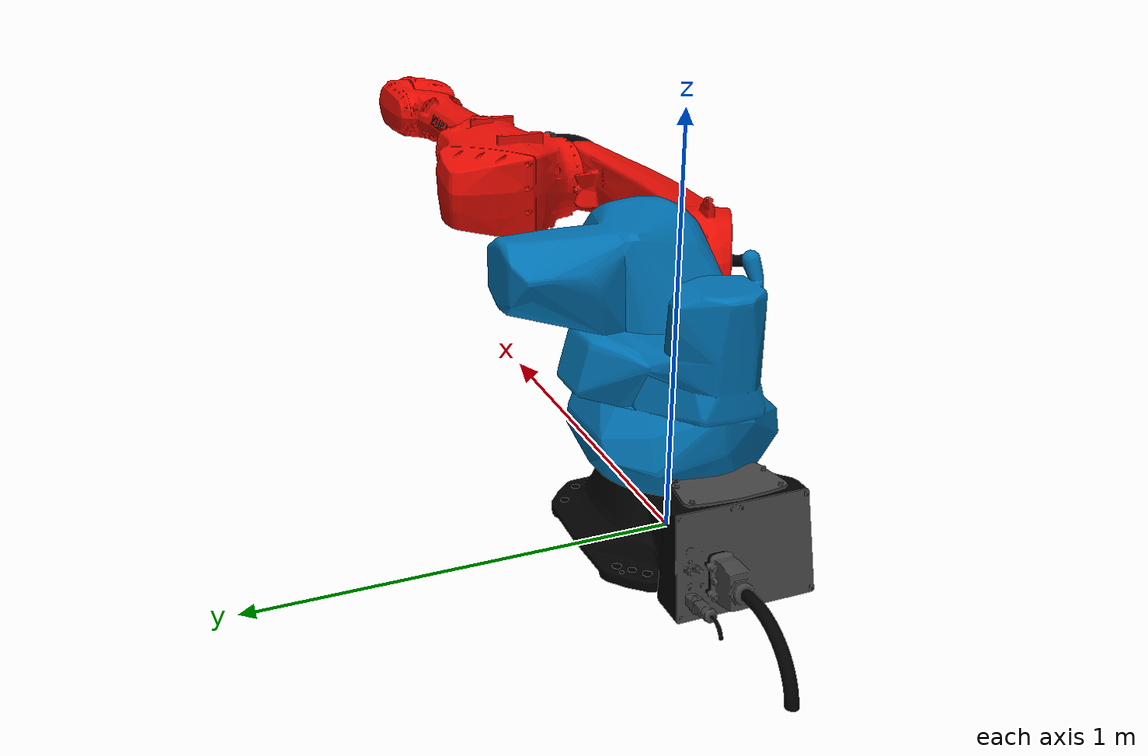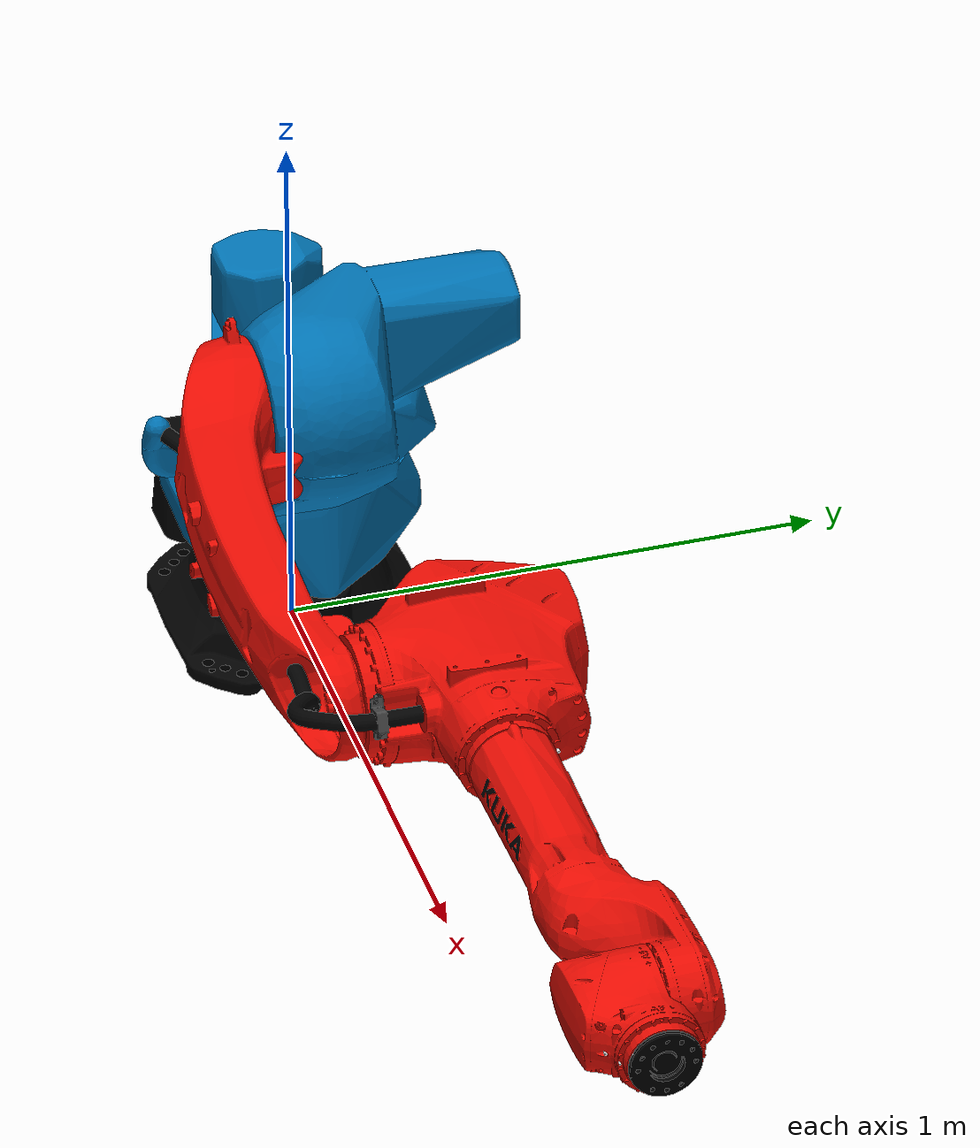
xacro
<?xml version="1.0"?>
<robot xmlns:xacro="http://www.ros.org/wiki/xacro" name="kr70_r2100">
    <xacro:arg name="initial_positions_file" default="initial_positions.yaml" />

    <!-- Import kr70_r2100 urdf file -->
    <xacro:include filename="$(find kuka_iontec_support)/urdf/kr70_r2100.urdf.xacro" />

    <!-- Import control_xacro -->
    <xacro:include filename="kr70_r2100.ros2_control.xacro" />

    <xacro:kr70_r2100_ros2_control name="FakeSystem" initial_positions_file="$(arg initial_positions_file)"/>

</robot>

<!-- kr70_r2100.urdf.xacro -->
<robot xmlns:xacro="http://ros.org/wiki/xacro" name="kr70_r2100">
  <!-- Import urdf file  -->
  <xacro:include filename="$(find kuka_iontec_support)/urdf/kr70_r2100_macro.xacro"/>
  <xacro:include filename="$(find kuka_iontec_support)/urdf/kr_iontec_ros2_control_macro.xacro"/>
  <!-- Read additional arguments  -->
  <xacro:arg name="driver_version" default="rsi_only"/>
  <xacro:arg name="mode" default="hardware"/>
  <xacro:arg name="gpio_config" default=""/>
  <xacro:arg name="roundtrip_time" default="0"/>
  <xacro:arg name="client_ip" default="0.0.0.0"/>
  <xacro:arg name="client_port" default="59152"/>
  <xacro:arg name="mxa_client_port" default="1337"/>
  <xacro:arg name="controller_ip" default="0.0.0.0"/>
  <xacro:arg name="verify_robot_model" default="true"/>
  <xacro:arg name="prefix" default=""/>
  <xacro:arg name="x" default="0"/>
  <xacro:arg name="y" default="0"/>
  <xacro:arg name="z" default="0"/>
  <xacro:arg name="roll" default="0"/>
  <xacro:arg name="pitch" default="0"/>
  <xacro:arg name="yaw" default="0"/>
  <xacro:arg name="rsi_xml_config_file" default=""/>
  <xacro:kuka_iontec_ros2_control name="$(arg prefix)kr70_r2100" driver_version="$(arg driver_version)" client_ip="$(arg client_ip)" client_port="$(arg client_port)" mxa_client_port="$(arg mxa_client_port)" controller_ip="$(arg controller_ip)" prefix="$(arg prefix)" mode="$(arg mode)" gpio_config="$(arg gpio_config)" roundtrip_time="$(arg roundtrip_time)" verify_robot_model="$(arg verify_robot_model)" rsi_xml_config_file="$(arg rsi_xml_config_file)">
    <ext_axes_ros2_control_joints/>
  </xacro:kuka_iontec_ros2_control>
  <!-- world link -->
  <link name="world"/>
  <!-- robot links, joints -->
  <xacro:kuka_kr70_r2100_robot prefix="$(arg prefix)" package_name="kuka_iontec_support"/>
  <!-- default world - base_link joint -->
  <joint name="$(arg prefix)world-base_link" type="fixed">
    <parent link="world"/>
    <child link="$(arg prefix)base_link"/>
    <origin xyz="$(arg x) $(arg y) $(arg z)" rpy="$(arg roll) $(arg pitch) $(arg yaw)"/>
  </joint>
</robot>

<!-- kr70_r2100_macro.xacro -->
<robot xmlns:xacro="http://www.ros.org/wiki/xacro" name="kr70_r2100">
  <xacro:macro name="kuka_kr70_r2100_robot" params="prefix package_name">
    <link name="${prefix}base"/>
    <link name="${prefix}base_link">
      <collision>
        <geometry>
          <mesh filename="package://${package_name}/meshes/kr70_r2100/collision/base_link.stl"/>
        </geometry>
        <origin rpy="0.0 -0.0 0.0" xyz="0.0 0.0 0.0"/>
      </collision>
      <inertial>
        <inertia ixx="3.2177145004213807" ixy="0.0" ixz="0.0" iyy="2.2094416675837567" iyz="0.0" izz="3.52194780966785"/>
        <mass value="1.0884E2"/>
        <origin rpy="-0.09552224276474014 0.005165689953882089 1.5692512343174836" xyz="-0.03534077545020213 3.248805586181593E-4 0.1698801176038221"/>
      </inertial>
      <visual>
        <geometry>
          <mesh filename="package://${package_name}/meshes/kr70_r2100/visual/base_link.dae"/>
        </geometry>
        <origin rpy="0.0 -0.0 0.0" xyz="0.0 0.0 0.0"/>
      </visual>
    </link>
    <link name="${prefix}flange"/>
    <link name="${prefix}link_1">
      <collision>
        <geometry>
          <mesh filename="package://${package_name}/meshes/kr70_r2100/collision/link_1.stl"/>
        </geometry>
        <origin rpy="-3.141592653589793 0.0 -0.0" xyz="0.0 -2.890166445987754e-17 0.23600000000000002"/>
      </collision>
      <inertial>
        <inertia ixx="5.4080181280809425" ixy="0.0" ixz="0.0" iyy="7.728094220373659" iyz="0.0" izz="9.09760059186078"/>
        <mass value="1.75325E2"/>
        <origin rpy="-0.7923716695848476 -0.8962849517813325 2.6966444929833755" xyz="0.038502341366034504 -0.03461156708969058 -0.23766980750035646"/>
      </inertial>
      <visual>
        <geometry>
          <mesh filename="package://${package_name}/meshes/kr70_r2100/visual/link_1.dae"/>
        </geometry>
        <origin rpy="-3.141592653589793 0.0 -0.0" xyz="0.0 -2.890166445987754e-17 0.23600000000000002"/>
      </visual>
    </link>
    <link name="${prefix}link_2">
      <collision>
        <geometry>
          <mesh filename="package://${package_name}/meshes/kr70_r2100/collision/link_2.stl"/>
        </geometry>
        <origin rpy="1.5707963267948968 -0.0 1.5707963267948966" xyz="-0.5750000000000001 -0.175 0.05400000000000006"/>
      </collision>
      <inertial>
        <inertia ixx="15.483287090360504" ixy="0.0" ixz="0.0" iyy="1.262000681065509" iyz="0.0" izz="15.708023767593247"/>
        <mass value="1.10245E2"/>
        <origin rpy="1.9950057025885188 -1.4165171241040309 -0.43163822532554286" xyz="0.3190670778720124 0.0011037053834641027 -0.09092739806793958"/>
      </inertial>
      <visual>
        <geometry>
          <mesh filename="package://${package_name}/meshes/kr70_r2100/visual/link_2.dae"/>
        </geometry>
        <origin rpy="1.5707963267948968 -0.0 1.5707963267948966" xyz="-0.5750000000000001 -0.175 0.05400000000000006"/>
      </visual>
    </link>
    <link name="${prefix}link_3">
      <collision>
        <geometry>
          <mesh filename="package://${package_name}/meshes/kr70_r2100/collision/link_3.stl"/>
        </geometry>
        <origin rpy="1.5707963267948968 -0.0 -0.0" xyz="-0.17500000000000007 1.465 0.15150000000000008"/>
      </collision>
      <inertial>
        <inertia ixx="1.9374943330998404" ixy="0.0" ixz="0.0" iyy="1.2794862044617523" iyz="0.0" izz="2.4067696897531503"/>
        <mass value="7.7210000000000008E1"/>
        <origin rpy="-1.4557529912028615 -1.5364770639921395 2.8844060117304284" xyz="0.03196111255018779 -0.02064343996891594 0.14874327159694334"/>
      </inertial>
      <visual>
        <geometry>
          <mesh filename="package://${package_name}/meshes/kr70_r2100/visual/link_3.dae"/>
        </geometry>
        <origin rpy="1.5707963267948968 -0.0 -0.0" xyz="-0.17500000000000007 1.465 0.15150000000000008"/>
      </visual>
    </link>
    <link name="${prefix}link_4">
      <collision>
        <geometry>
          <mesh filename="package://${package_name}/meshes/kr70_r2100/collision/link_4.stl"/>
        </geometry>
        <origin rpy="1.8369701987210297e-16 1.5707963267948966 0.0" xyz="-1.5150000000000001 4.351812035153249e-17 0.48305"/>
      </collision>
      <inertial>
        <inertia ixx="0.15527317640271737" ixy="0.0" ixz="0.0" iyy="2.4844703602432903" iyz="0.0" izz="2.4851344658170986"/>
        <mass value="3.7472064569E1"/>
        <origin rpy="0.9066547122977626 -1.4741315635896037 -1.5762320682233082" xyz="1.8672761735367944E-4 0.024344871443223025 -0.410036764162044"/>
      </inertial>
      <visual>
        <geometry>
          <mesh filename="package://${package_name}/meshes/kr70_r2100/visual/link_4.dae"/>
        </geometry>
        <origin rpy="1.8369701987210297e-16 1.5707963267948966 0.0" xyz="-1.5150000000000001 4.351812035153249e-17 0.48305"/>
      </visual>
    </link>
    <link name="${prefix}link_5">
      <collision>
        <geometry>
          <mesh filename="package://${package_name}/meshes/kr70_r2100/collision/link_5.stl"/>
        </geometry>
        <origin rpy="1.5707963267948968 -3.749399456654644e-33 -6.123233995736766e-17" xyz="-1.2100000000000002 1.515 -0.047949999999999986"/>
      </collision>
      <inertial>
        <inertia ixx="0.10711969449451485" ixy="0.0" ixz="0.0" iyy="0.08148359500597324" iyz="0.0" izz="0.13367084389816117"/>
        <mass value="1.6864E1"/>
        <origin rpy="-1.55472489601999 -1.010259829787014 -0.021903458742890233" xyz="0.033451743951612906 4.5958550759013294E-4 -0.05438517018500949"/>
      </inertial>
      <visual>
        <geometry>
          <mesh filename="package://${package_name}/meshes/kr70_r2100/visual/link_5.dae"/>
        </geometry>
        <origin rpy="1.5707963267948968 -3.749399456654644e-33 -6.123233995736766e-17" xyz="-1.2100000000000002 1.515 -0.047949999999999986"/>
      </visual>
    </link>
    <link name="${prefix}link_6">
      <collision>
        <geometry>
          <mesh filename="package://${package_name}/meshes/kr70_r2100/collision/link_6.stl"/>
        </geometry>
        <origin rpy="1.2246467991473532e-16 1.5707963267948966 0.0" xyz="-1.5150000000000001 -4.737419163827789e-17 1.359"/>
      </collision>
      <inertial>
        <inertia ixx="0.005449254322149769" ixy="0.0" ixz="0.0" iyy="0.0049739684879002094" iyz="0.0" izz="0.006686837433027925"/>
        <mass value="3.915E0"/>
        <origin rpy="-0.2685889603709644 5.144652102933411E-4 1.5711185398474925" xyz="-0.0036296296296296294 5.006385696040868E-6 -0.0011618773946360187"/>
      </inertial>
      <visual>
        <geometry>
          <mesh filename="package://${package_name}/meshes/kr70_r2100/visual/link_6.dae"/>
        </geometry>
        <origin rpy="1.2246467991473532e-16 1.5707963267948966 0.0" xyz="-1.5150000000000001 -4.737419163827789e-17 1.359"/>
      </visual>
    </link>
    <link name="${prefix}tool0"/>
    <joint name="${prefix}base_link-base" type="fixed">
      <child link="${prefix}base"/>
      <parent link="${prefix}base_link"/>
    </joint>
    <joint name="${prefix}joint_1" type="revolute">
      <axis xyz="0.0 0.0 1.0"/>
      <child link="${prefix}link_1"/>
      <limit effort="5.528892E3" lower="-3.2288591125E0" upper="3.2288591125E0" velocity="3.1415926535897931E0"/>
      <origin rpy="3.141592653589793 -0.0 0.0" xyz="0.0 0.0 0.23600000000000002"/>
      <parent link="${prefix}base_link"/>
    </joint>
    <joint name="${prefix}joint_2" type="revolute">
      <axis xyz="0.0 0.0 1.0"/>
      <child link="${prefix}link_2"/>
      <limit effort="4.6299018160929445E3" lower="-3.0543261875E0" upper="1.04719755E0" velocity="2.7571961400431091E0"/>
      <origin rpy="1.5707963267948966 -0.0 0.0" xyz="0.17500000000000002 0.054 -0.339"/>
      <parent link="${prefix}link_1"/>
    </joint>
    <joint name="${prefix}joint_3" type="revolute">
      <axis xyz="0.0 0.0 1.0"/>
      <child link="${prefix}link_3"/>
      <limit effort="1.7833048882511127E3" lower="-2.0943951E0" upper="2.8797932625E0" velocity="2.7925268031909272E0"/>
      <origin rpy="0.0 -0.0 0.0" xyz="0.89 0.0 -0.0975"/>
      <parent link="${prefix}link_2"/>
    </joint>
    <joint name="${prefix}joint_4" type="revolute">
      <axis xyz="0.0 0.0 1.0"/>
      <child link="${prefix}link_4"/>
      <limit effort="6.4550997124439027E2" lower="-3.14159265E0" upper="3.14159265E0" velocity="4.0142572795869578E0"/>
      <origin rpy="1.5707963267948966 -0.0 -1.5707963267948966" xyz="0.30805 -0.05 0.1515"/>
      <parent link="${prefix}link_3"/>
    </joint>
    <joint name="${prefix}joint_5" type="revolute">
      <axis xyz="0.0 0.0 1.0"/>
      <child link="${prefix}link_5"/>
      <limit effort="5.830105726045656E2" lower="-2.1816615625E0" upper="2.1816615625E0" velocity="4.0142572795869578E0"/>
      <origin rpy="0.0 1.5707963267948966 1.5707963267948966" xyz="0.0 0.047950000000000007 -0.7269500000000001"/>
      <parent link="${prefix}link_4"/>
    </joint>
    <joint name="${prefix}joint_6" type="revolute">
      <axis xyz="0.0 0.0 1.0"/>
      <child link="${prefix}link_6"/>
      <limit effort="3.3916444956327337E2" lower="-6.108652375E0" upper="6.108652375E0" velocity="5.5850536063818543E0"/>
      <origin rpy="1.5707963267948966 -0.0 -1.5707963267948966" xyz="0.149 0.0 -0.047950000000000007"/>
      <parent link="${prefix}link_5"/>
    </joint>
    <joint name="${prefix}link6-flange" type="fixed">
      <child link="${prefix}flange"/>
      <origin rpy="0.0 1.5707963267948966 0.0" xyz="0.0 0.0 -0.036000000000000004"/>
      <parent link="${prefix}link_6"/>
    </joint>
    <joint name="${prefix}link6-tool0" type="fixed">
      <child link="${prefix}tool0"/>
      <origin rpy="3.141592653589793 1.2246467991473532E-16 3.141592653589793" xyz="0.0 0.0 -0.036000000000000004"/>
      <parent link="${prefix}link_6"/>
    </joint>
  </xacro:macro>
</robot>
